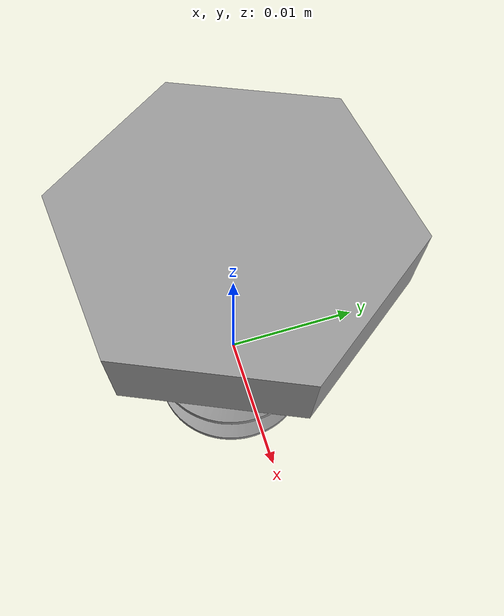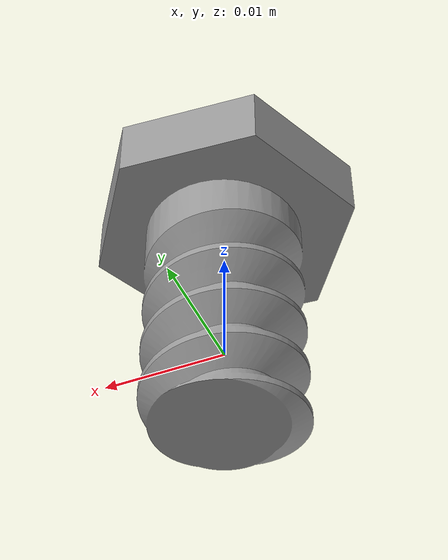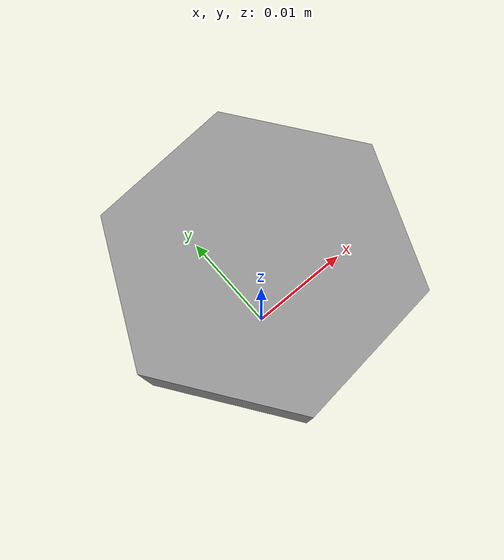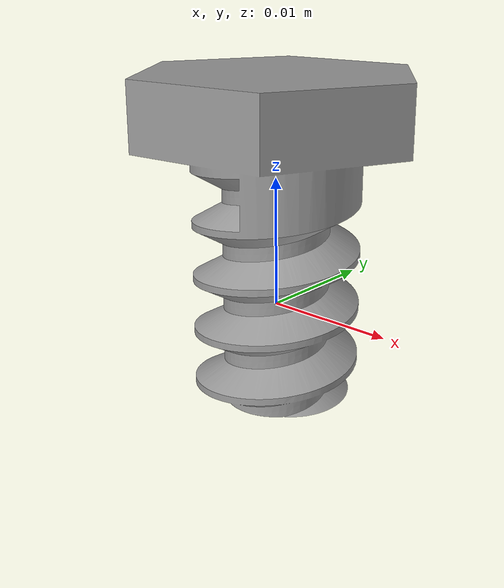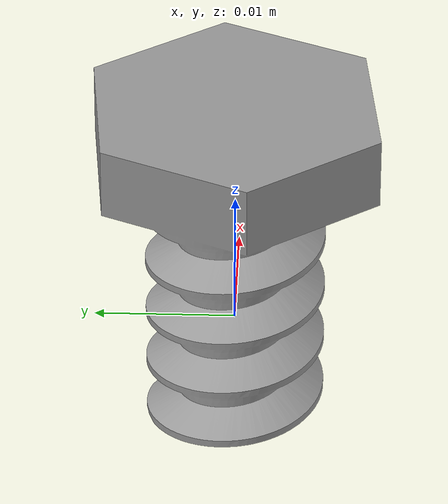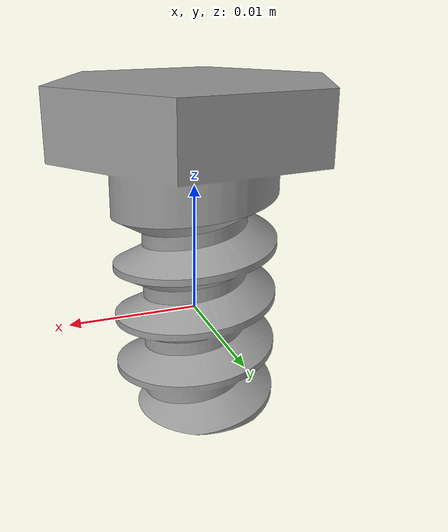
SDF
<?xml version='1.0'?>
<sdf version='1.6'>
  <model name='HW_tap_bolt_sc_f_5'>
    <link name='link_2'>
      <inertial>
        <mass>1</mass>
        <inertia>
          <ixx>0.0166667</ixx>
          <ixy>0</ixy>
          <ixz>0</ixz>
          <iyy>0.0166667</iyy>
          <iyz>0</iyz>
          <izz>0.0166667</izz>
        </inertia>
      </inertial>
      <pose>0 0 -1e-06 3.14159 -0.002979 3.14159</pose>
      <visual name='visual'>
        <pose>0 0 0 0 -0 0</pose>
        <geometry>
          <mesh>
            <uri>/home/wanghu26/battery_ws/src/battery_model/battery_model_stl/HW_hex_bolt_tap_thread.stl</uri>
            <scale>1 1 1</scale>
          </mesh>
        </geometry>
        <material>
          <lighting>1</lighting>
          <script>
            <uri>file://media/materials/scripts/gazebo.material</uri>
            <name>Gazebo/Grey</name>
          </script>
          <shader type='pixel'/>
        </material>
        <transparency>0</transparency>
        <cast_shadows>1</cast_shadows>
      </visual>
      <collision name='collision'>
        <laser_retro>0</laser_retro>
        <max_contacts>10</max_contacts>
        <pose>0 -0.1 0 0 -0 0</pose>
        <geometry>
          <box>
            <size>0.02 0.02 0.04</size>
          </box>
        </geometry>
        <surface>
          <friction>
            <ode>
              <mu>1</mu>
              <mu2>1</mu2>
              <fdir1>0 0 0</fdir1>
              <slip1>0</slip1>
              <slip2>0</slip2>
            </ode>
            <torsional>
              <coefficient>1</coefficient>
              <patch_radius>0.1</patch_radius>
              <surface_radius>0.1</surface_radius>
              <use_patch_radius>1</use_patch_radius>
              <ode>
                <slip>0</slip>
              </ode>
            </torsional>
          </friction>
          <bounce>
            <restitution_coefficient>0</restitution_coefficient>
            <threshold>1e+06</threshold>
          </bounce>
          <contact>
            <collide_without_contact>0</collide_without_contact>
            <collide_without_contact_bitmask>1</collide_without_contact_bitmask>
            <collide_bitmask>1</collide_bitmask>
            <ode>
              <soft_cfm>0</soft_cfm>
              <soft_erp>0.2</soft_erp>
              <kp>1e+13</kp>
              <kd>1</kd>
              <max_vel>0.01</max_vel>
              <min_depth>0</min_depth>
            </ode>
            <bullet>
              <split_impulse>1</split_impulse>
              <split_impulse_penetration_threshold>-0.01</split_impulse_penetration_threshold>
              <soft_cfm>0</soft_cfm>
              <soft_erp>0.2</soft_erp>
              <kp>1e+13</kp>
              <kd>1</kd>
            </bullet>
          </contact>
        </surface>
      </collision>
    </link>
    <static>1</static>
    <allow_auto_disable>1</allow_auto_disable>
  </model>
</sdf>
